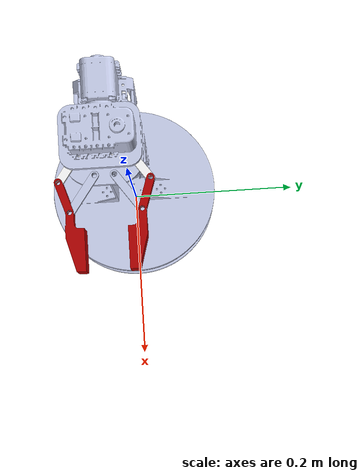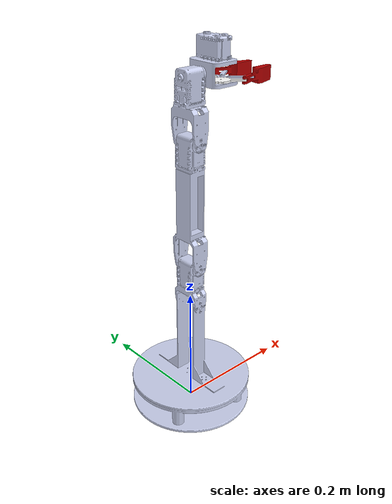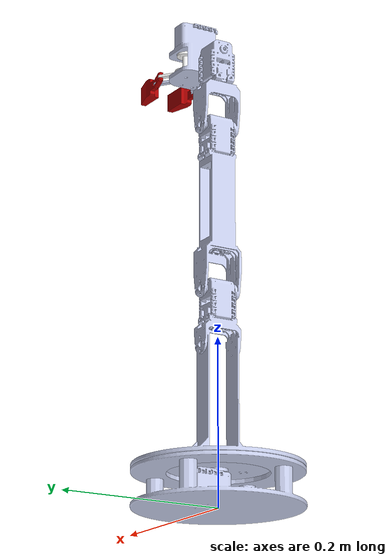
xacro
<?xml version="1.0"?>
<robot name="ahman_robot" xmlns:xacro="http://www.ros.org/wiki/xacro">
  <xacro:include filename="$(find ahman_robot_description)/urdf/ahman_robot_description.urdf" />

  <!-- Rigidly fix the model to the world -->
  <link name="world"/>
  <joint name="fixed" type="fixed">
    <parent link="world"/>
    <child link="base_link"/>
  </joint>
</robot>

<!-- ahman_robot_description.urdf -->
<robot
  name="ahman_robot">
  <link
    name="base_link">
    <inertial>
      <origin
        xyz="4.03515664332277E-06 0.00156731385501752 0.0194386010664612"
        rpy="0 0 0" />
      <mass
        value="0.341700717762722" />
      <inertia
        ixx="0.000988663190405644"
        ixy="-1.04160274271504E-08"
        ixz="-1.46302809934933E-09"
        iyy="0.000983473535631327"
        iyz="-2.20301206814554E-07"
        izz="0.00175721561725007" />
    </inertial>
    <visual>
      <origin
        xyz="0 0 0"
        rpy="0 0 0" />
      <geometry>
        <mesh
          filename="package://ahman_robot_description/meshes/base_link.STL" />
      </geometry>
      <material
        name="">
        <color
          rgba="0.792156862745098 0.819607843137255 0.933333333333333 1" />
      </material>
    </visual>
    <collision>
      <origin
        xyz="0 0 0"
        rpy="0 0 0" />
      <geometry>
        <mesh
          filename="package://ahman_robot_description/meshes/base_link.STL" />
      </geometry>
    </collision>
  </link>
  <link
    name="shoulder_lnik">
    <inertial>
      <origin
        xyz="0.000101238677035154 -0.000114305022123146 0.0495521735599035"
        rpy="0 0 0" />
      <mass
        value="0.230749674146513" />
      <inertia
        ixx="0.000462188953983829"
        ixy="-1.46726651813318E-09"
        ixz="-1.04430975449333E-08"
        iyy="0.000456255559294962"
        iyz="-1.90943812456882E-07"
        izz="0.000797285270507836" />
    </inertial>
    <visual>
      <origin
        xyz="0 0 0"
        rpy="0 0 0" />
      <geometry>
        <mesh
          filename="package://ahman_robot_description/meshes/shoulder_lnik.STL" />
      </geometry>
      <material
        name="">
        <color
          rgba="0.792156862745098 0.819607843137255 0.933333333333333 1" />
      </material>
    </visual>
    <collision>
      <origin
        xyz="0 0 0"
        rpy="0 0 0" />
      <geometry>
        <mesh
          filename="package://ahman_robot_description/meshes/shoulder_lnik.STL" />
      </geometry>
    </collision>
  </link>
  <joint
    name="shoulder_joint"
    type="revolute">
    <origin
      xyz="0 0 0.045"
      rpy="0 0 0" />
    <parent
      link="base_link" />
    <child
      link="shoulder_lnik" />
    <axis
      xyz="0 0 -1" />
		<limit
      lower="-2.2689280275926285"
      upper="2.2689280275926285"
      effort="0"
      velocity="0" />
  </joint>
  <link
    name="elbow_link">
    <inertial>
      <origin
        xyz="6.68706254368101E-05 0.0205389315072919 0.132700787352869"
        rpy="0 0 0" />
      <mass
        value="0.096262640443939" />
      <inertia
        ixx="7.6702370653249E-05"
        ixy="-1.45413248580412E-09"
        ixz="-9.030856196559E-08"
        iyy="7.24501645017268E-05"
        iyz="-1.90966118088874E-07"
        izz="1.90081952297504E-05" />
    </inertial>
    <visual>
      <origin
        xyz="0 0 0"
        rpy="0 0 0" />
      <geometry>
        <mesh
          filename="package://ahman_robot_description/meshes/elbow_link.STL" />
      </geometry>
      <material
        name="">
        <color
          rgba="0.792156862745098 0.819607843137255 0.933333333333333 1" />
      </material>
    </visual>
    <collision>
      <origin
        xyz="0 0 0"
        rpy="0 0 0" />
      <geometry>
        <mesh
          filename="package://ahman_robot_description/meshes/elbow_link.STL" />
      </geometry>
    </collision>
  </link>
  <joint
    name="elbow_joint"
    type="revolute">
    <origin
      xyz="0.00034037 -0.021063 0.2115"
      rpy="0 0 0" />
    <parent
      link="shoulder_lnik" />
    <child
      link="elbow_link" />
    <axis
      xyz="0 1 0" />
    <limit
      lower="0"
      upper="1.5707963267948966"
      effort="0"
      velocity="0" />
  </joint>
  <link
    name="wrist_link">
    <inertial>
      <origin
        xyz="0.000241253995371227 0.0205903281834586 0.0675596012185864"
        rpy="0 0 0" />
      <mass
        value="0.0582938416196411" />
      <inertia
        ixx="1.93982453388511E-05"
        ixy="1.47192371761609E-09"
        ixz="2.70708158228733E-07"
        iyy="1.72343098370362E-05"
        iyz="-1.05212597232834E-08"
        izz="1.29425910830237E-05" />
    </inertial>
    <visual>
      <origin
        xyz="0 0 0"
        rpy="0 0 0" />
      <geometry>
        <mesh
          filename="package://ahman_robot_description/meshes/wrist_link.STL" />
      </geometry>
      <material
        name="">
        <color
          rgba="0.792156862745098 0.819607843137255 0.933333333333333 1" />
      </material>
    </visual>
    <collision>
      <origin
        xyz="0 0 0"
        rpy="0 0 0" />
      <geometry>
        <mesh
          filename="package://ahman_robot_description/meshes/wrist_link.STL" />
      </geometry>
    </collision>
  </link>
  <joint
    name="wrist_joint"
    type="revolute">
    <origin
      xyz="0 0 0.2032"
      rpy="0 0 0" />
    <parent
      link="elbow_link" />
    <child
      link="wrist_link" />
    <axis
      xyz="0 1 0" />
    <limit
      lower="0"
      upper="1.5707963267948966"
      effort="0"
      velocity="0" />
  </joint>
  <link
    name="knuckle_link">
    <inertial>
      <origin
        xyz="0.0235984795025687 0.000742750048917579 0.0180124642206413"
        rpy="0 0 0" />
      <mass
        value="0.070331938721002" />
      <inertia
        ixx="2.52473213768789E-05"
        ixy="6.19115593070956E-08"
        ixz="7.62601432924068E-07"
        iyy="1.93683930570014E-05"
        iyz="1.8098195926761E-07"
        izz="2.54377352659079E-05" />
    </inertial>
    <visual>
      <origin
        xyz="0 0 0"
        rpy="0 0 0" />
      <geometry>
        <mesh
          filename="package://ahman_robot_description/meshes/knuckle_link.STL" />
      </geometry>
      <material
        name="">
        <color
          rgba="0.792156862745098 0.819607843137255 0.933333333333333 1" />
      </material>
    </visual>
    <collision>
      <origin
        xyz="0 0 0"
        rpy="0 0 0" />
      <geometry>
        <mesh
          filename="package://ahman_robot_description/meshes/knuckle_link.STL" />
      </geometry>
    </collision>
  </link>
  <joint
    name="knuckle_joint"
    type="revolute">
    <origin
      xyz="0.021 0.021 0.0952"
      rpy="0 0 0" />
    <parent
      link="wrist_link" />
    <child
      link="knuckle_link" />
    <axis
      xyz="-1 0 0" />
    <limit
      lower="-2.2689280275926285"
      upper="2.2689280275926285"
      effort="0"
      velocity="0" />
  </joint>
  <link
    name="left_gear_link">
    <inertial>
      <origin
        xyz="0.00173202665550959 0.0010401447452989 -0.0157285877417442"
        rpy="0 0 0" />
      <mass
        value="0.00440214385375005" />
      <inertia
        ixx="3.54958340979828E-07"
        ixy="-1.03539021241121E-07"
        ixz="1.45367547115379E-08"
        iyy="4.31532581873505E-07"
        iyz="1.04315709445713E-08"
        izz="5.16608277909124E-07" />
    </inertial>
    <visual>
      <origin
        xyz="0 0 0"
        rpy="0 0 0" />
      <geometry>
        <mesh
          filename="package://ahman_robot_description/meshes/left_gear_link.STL" />
      </geometry>
      <material
        name="">
        <color
          rgba="1 1 1 1" />
      </material>
    </visual>
    <collision>
      <origin
        xyz="0 0 0"
        rpy="0 0 0" />
      <geometry>
        <mesh
          filename="package://ahman_robot_description/meshes/left_gear_link.STL" />
      </geometry>
    </collision>
  </link>
  <joint
    name="left_gear_joint"
    type="revolute">
    <origin
      xyz="0.025 0.015 0.0125"
      rpy="0 0 0" />
    <parent
      link="knuckle_link" />
    <child
      link="left_gear_link" />
    <axis
      xyz="0 0 1" />
    <limit
      lower="-0.51"
      upper="0.90"
      effort="0"
      velocity="0" />
  </joint>
  <link
    name="left_finger_tip_link">
    <inertial>
      <origin
        xyz="0.0441131161508655 -0.0111946654022016 9.65549627929274E-06"
        rpy="0 0 0" />
      <mass
        value="0.00995624544719296" />
      <inertia
        ixx="5.59096232163477E-07"
        ixy="4.76644387717978E-07"
        ixz="2.9656093283699E-09"
        iyy="2.68387876530051E-06"
        iyz="-6.68087296275808E-10"
        izz="2.53748010084301E-06" />
    </inertial>
    <visual>
      <origin
        xyz="0 0 0"
        rpy="0 0 0" />
      <geometry>
        <mesh
          filename="package://ahman_robot_description/meshes/left_finger_tip_link.STL" />
      </geometry>
      <material
        name="">
        <color
          rgba="0.698039215686274 0 0 1" />
      </material>
    </visual>
    <collision>
      <origin
        xyz="0 0 0"
        rpy="0 0 0" />
      <geometry>
        <mesh
          filename="package://ahman_robot_description/meshes/left_finger_tip_link.STL" />
      </geometry>
    </collision>
  </link>
  <joint
    name="left_finger_tip_joint"
    type="continuous">
    <origin
      xyz="0.027469 0.019609 -0.0235"
      rpy="0 0 0" />
    <parent
      link="left_gear_link" />
    <child
      link="left_finger_tip_link" />
    <axis
      xyz="0 0 -1" />
		<mimic joint="left_gear_joint"/>
  </joint>
  <link
    name="right_gear_link">
    <inertial>
      <origin
        xyz="0.00317775901945931 -0.00195624294520627 0"
        rpy="0 0 0" />
      <mass
        value="0.00239089226491989" />
      <inertia
        ixx="1.8389181007704E-07"
        ixy="1.00121330617587E-07"
        ixz="-1.13021825928484E-22"
        iyy="2.58723464874534E-07"
        iyz="1.29346077240487E-23"
        izz="4.39028936554194E-07" />
    </inertial>
    <visual>
      <origin
        xyz="0 0 0"
        rpy="0 0 0" />
      <geometry>
        <mesh
          filename="package://ahman_robot_description/meshes/right_gear_link.STL" />
      </geometry>
      <material
        name="">
        <color
          rgba="1 1 1 1" />
      </material>
    </visual>
    <collision>
      <origin
        xyz="0 0 0"
        rpy="0 0 0" />
      <geometry>
        <mesh
          filename="package://ahman_robot_description/meshes/right_gear_link.STL" />
      </geometry>
    </collision>
  </link>
  <joint
    name="right_gear_joint"
    type="continuous">
    <origin
      xyz="0.025 -0.015 -0.011"
      rpy="0 0 0" />
    <parent
      link="knuckle_link" />
    <child
      link="right_gear_link" />
    <axis
      xyz="0 0 -1" />
		<mimic joint="left_gear_joint"/>
  </joint>
  <link
    name="right_finger_tip_link">
    <inertial>
      <origin
        xyz="0.0441131161508605 0.0111946654022214 -0.000509655496279127"
        rpy="0 0 0" />
      <mass
        value="0.00995624544719294" />
      <inertia
        ixx="5.59096232163903E-07"
        ixy="-4.76644387718929E-07"
        ixz="-2.96560932836692E-09"
        iyy="2.68387876530007E-06"
        iyz="-6.68087296276518E-10"
        izz="2.537480100843E-06" />
    </inertial>
    <visual>
      <origin
        xyz="0 0 0"
        rpy="0 0 0" />
      <geometry>
        <mesh
          filename="package://ahman_robot_description/meshes/right_finger_tip_link.STL" />
      </geometry>
      <material
        name="">
        <color
          rgba="0.698039215686274 0 0 1" />
      </material>
    </visual>
    <collision>
      <origin
        xyz="0 0 0"
        rpy="0 0 0" />
      <geometry>
        <mesh
          filename="package://ahman_robot_description/meshes/right_finger_tip_link.STL" />
      </geometry>
    </collision>
  </link>
  <joint
    name="right_finger_tip_joint"
    type="continuous">
    <origin
      xyz="0.027469 -0.019609 0"
      rpy="0 0 0" />
    <parent
      link="right_gear_link" />
    <child
      link="right_finger_tip_link" />
    <axis
      xyz="0 0 1" />
		<mimic joint="left_gear_joint"/>
  </joint>
  <link
    name="left_finger_link">
    <inertial>
      <origin
        xyz="0.0137344597130272 0.0098046030715799 1.11022302462516E-16"
        rpy="0 0 0" />
      <mass
        value="0.000682275993524468" />
      <inertia
        ixx="2.72087572377812E-08"
        ixy="-3.38891767074032E-08"
        ixz="-5.54949239037448E-23"
        iyy="5.04888816707687E-08"
        iyz="-4.168685264938E-23"
        izz="7.66742249182632E-08" />
    </inertial>
    <visual>
      <origin
        xyz="0 0 0"
        rpy="0 0 0" />
      <geometry>
        <mesh
          filename="package://ahman_robot_description/meshes/left_finger_link.STL" />
      </geometry>
      <material
        name="">
        <color
          rgba="0.792156862745098 0.819607843137255 0.933333333333333 1" />
      </material>
    </visual>
    <collision>
      <origin
        xyz="0 0 0"
        rpy="0 0 0" />
      <geometry>
        <mesh
          filename="package://ahman_robot_description/meshes/left_finger_link.STL" />
      </geometry>
    </collision>
  </link>
  <joint
    name="left_finger_joint"
    type="continuous">
    <origin
      xyz="0.048 0.0075 -0.011"
      rpy="0 0 0" />
    <parent
      link="knuckle_link" />
    <child
      link="left_finger_link" />
    <axis
      xyz="0 0 1" />
		<mimic joint="left_gear_joint"/>
  </joint>
  <link
    name="right_finger_link">
    <inertial>
      <origin
        xyz="0.0137344597130273 -0.00980460307157982 1.11022302462516E-16"
        rpy="0 0 0" />
      <mass
        value="0.000682275993524469" />
      <inertia
        ixx="2.72087572377805E-08"
        ixy="3.3889176707403E-08"
        ixz="1.86987226295092E-23"
        iyy="5.04888816707694E-08"
        iyz="-1.7836171978725E-23"
        izz="7.66742249182632E-08" />
    </inertial>
    <visual>
      <origin
        xyz="0 0 0"
        rpy="0 0 0" />
      <geometry>
        <mesh
          filename="package://ahman_robot_description/meshes/right_finger_link.STL" />
      </geometry>
      <material
        name="">
        <color
          rgba="0.792156862745098 0.819607843137255 0.933333333333333 1" />
      </material>
    </visual>
    <collision>
      <origin
        xyz="0 0 0"
        rpy="0 0 0" />
      <geometry>
        <mesh
          filename="package://ahman_robot_description/meshes/right_finger_link.STL" />
      </geometry>
    </collision>
  </link>
  <joint
    name="right_finger_joint"
    type="continuous">
    <origin
      xyz="0.048 -0.0075 -0.011"
      rpy="0 0 0" />
    <parent
      link="knuckle_link" />
    <child
      link="right_finger_link" />
    <axis
      xyz="0 0 -1" />
		<mimic joint="left_gear_joint"/>
  </joint>
</robot>
